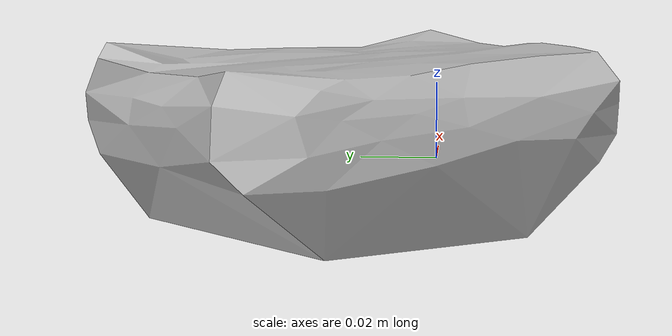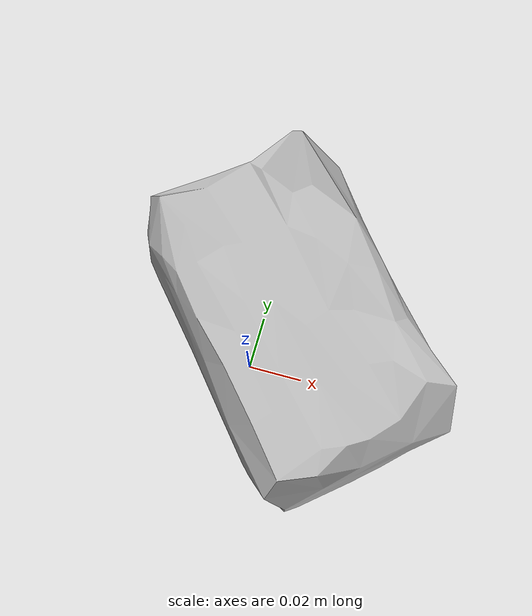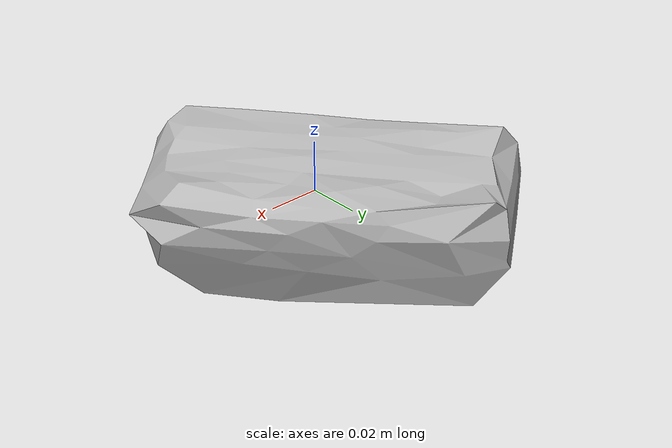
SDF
<?xml version="1.0" ?>
<sdf version="1.4">
  <model name="mead_index_cards">
    <link name="mead_index_cards_link">
      <inertial>
        <pose>0 0 0 0 0 0</pose>
        <mass>0.08</mass>
      </inertial>

      <visual name="mead_index_cards_visual">
        <pose>0 0 0 0 0 0</pose>
        <material>
          <script>
            <uri>model://mead_index_cards/materials/scripts</uri>
            <uri>model://mead_index_cards/materials/textures</uri>
            <name>mead_index_cards</name>
          </script>
        </material>
        <geometry>
          <mesh>
            <uri>model://mead_index_cards/meshes/mead_index_cards.dae</uri>
          </mesh>
        </geometry>
      </visual>

      <collision name="mead_index_cards_collision">
        <pose>0 0 0 0 0 0</pose>
        <geometry>
          <mesh>
            <uri>model://mead_index_cards/meshes/mead_index_cards.dae</uri>
          </mesh>
        </geometry>
        <surface>
          <friction>
            <ode>
              <mu>0.8</mu>
              <mu2>0.8</mu2>
            </ode>
          </friction>
        </surface>
      </collision>

    </link>
  </model>
</sdf>
